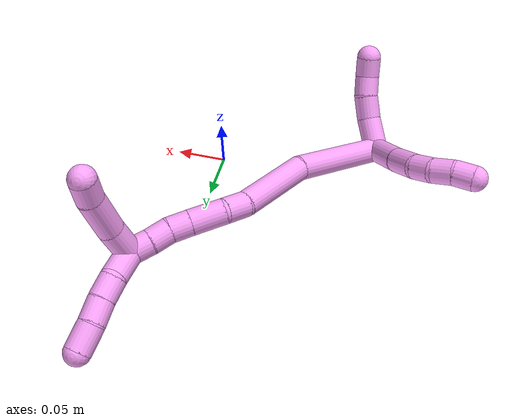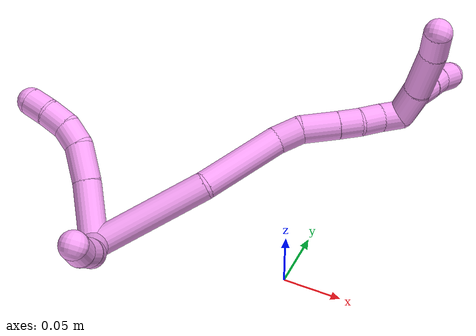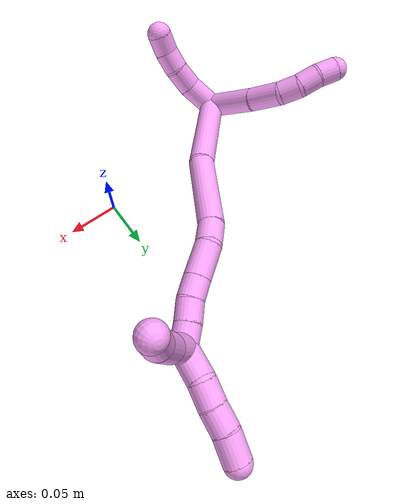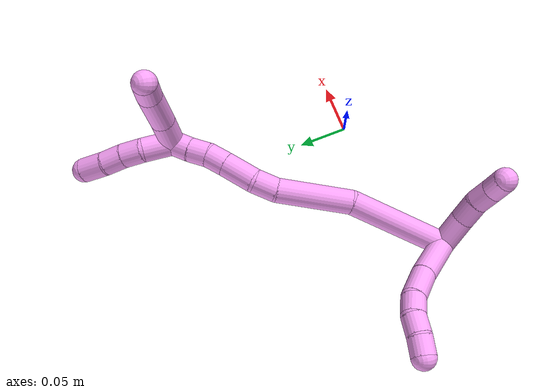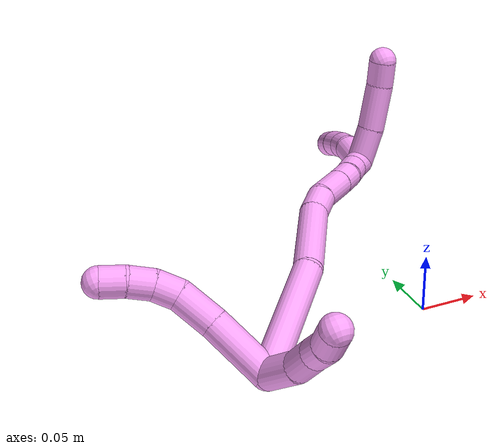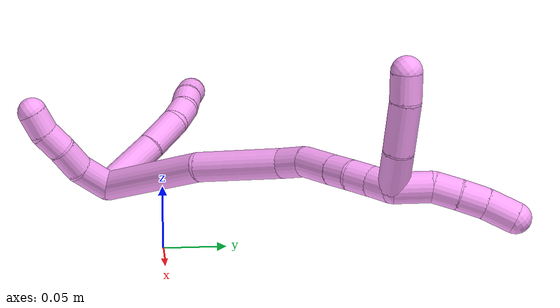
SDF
<sdf version="1.7">
 <world name="default">
  <model name="4">
   <static>0</static>
   <link name="4">
    <collision name="collision-cylinder-e_1_2_8">
     <pose>-0.010753 -0.004935 0.024592 0.198052 -0.404995 -0.04079</pose>
     <geometry><cylinder><radius>0.0125</radius><length>0.05458</length></cylinder></geometry>
     <surface>
      <friction><ode><mu>1.16</mu><mu2>1.16</mu2><slip1>0</slip1><slip2>0</slip2></ode></friction>
      <contact><ode><kp>1e+06</kp><kd>1</kd><max_vel>0</max_vel><min_depth>0.001</min_depth></ode></contact>
     </surface>
    </collision>
    <visual name="visual-cylinder-e_1_2_8">
     <pose>-0.010753 -0.004935 0.024592 0.198052 -0.404995 -0.04079</pose>
     <geometry><cylinder><radius>0.0125</radius><length>0.05458</length></cylinder></geometry>
     <material><ambient>1 0.65098 0.996078 1</ambient></material>
    </visual>
    <collision name="collision-cylinder-e_2_8_9">
     <pose>-0.029197 -0.014033 0.06357 0.281663 -0.474492 -0.068533</pose>
     <geometry><cylinder><radius>0.0125</radius><length>0.033671</length></cylinder></geometry>
     <surface>
      <friction><ode><mu>1.16</mu><mu2>1.16</mu2><slip1>0</slip1><slip2>0</slip2></ode></friction>
      <contact><ode><kp>1e+06</kp><kd>1</kd><max_vel>0</max_vel><min_depth>0.001</min_depth></ode></contact>
     </surface>
    </collision>
    <visual name="visual-cylinder-e_2_8_9">
     <pose>-0.029197 -0.014033 0.06357 0.281663 -0.474492 -0.068533</pose>
     <geometry><cylinder><radius>0.0125</radius><length>0.033671</length></cylinder></geometry>
     <material><ambient>1 0.65098 0.996078 1</ambient></material>
    </visual>
    <collision name="collision-cylinder-e_3_9_10">
     <pose>-0.043811 -0.022278 0.084461 0.5604 -0.733514 -0.220193</pose>
     <geometry><cylinder><radius>0.0125</radius><length>0.020678</length></cylinder></geometry>
     <surface>
      <friction><ode><mu>1.16</mu><mu2>1.16</mu2><slip1>0</slip1><slip2>0</slip2></ode></friction>
      <contact><ode><kp>1e+06</kp><kd>1</kd><max_vel>0</max_vel><min_depth>0.001</min_depth></ode></contact>
     </surface>
    </collision>
    <visual name="visual-cylinder-e_3_9_10">
     <pose>-0.043811 -0.022278 0.084461 0.5604 -0.733514 -0.220193</pose>
     <geometry><cylinder><radius>0.0125</radius><length>0.020678</length></cylinder></geometry>
     <material><ambient>1 0.65098 0.996078 1</ambient></material>
    </visual>
    <collision name="collision-cylinder-e_4_10_11">
     <pose>-0.058935 -0.031762 0.094738 0.961364 -0.894041 -0.489937</pose>
     <geometry><cylinder><radius>0.0125</radius><length>0.021041</length></cylinder></geometry>
     <surface>
      <friction><ode><mu>1.16</mu><mu2>1.16</mu2><slip1>0</slip1><slip2>0</slip2></ode></friction>
      <contact><ode><kp>1e+06</kp><kd>1</kd><max_vel>0</max_vel><min_depth>0.001</min_depth></ode></contact>
     </surface>
    </collision>
    <visual name="visual-cylinder-e_4_10_11">
     <pose>-0.058935 -0.031762 0.094738 0.961364 -0.894041 -0.489937</pose>
     <geometry><cylinder><radius>0.0125</radius><length>0.021041</length></cylinder></geometry>
     <material><ambient>1 0.65098 0.996078 1</ambient></material>
    </visual>
    <collision name="collision-cylinder-e_5_11_6">
     <pose>-0.076034 -0.040782 0.101347 0.905537 -1.0939 -0.575974</pose>
     <geometry><cylinder><radius>0.0125</radius><length>0.020029</length></cylinder></geometry>
     <surface>
      <friction><ode><mu>1.16</mu><mu2>1.16</mu2><slip1>0</slip1><slip2>0</slip2></ode></friction>
      <contact><ode><kp>1e+06</kp><kd>1</kd><max_vel>0</max_vel><min_depth>0.001</min_depth></ode></contact>
     </surface>
    </collision>
    <visual name="visual-cylinder-e_5_11_6">
     <pose>-0.076034 -0.040782 0.101347 0.905537 -1.0939 -0.575974</pose>
     <geometry><cylinder><radius>0.0125</radius><length>0.020029</length></cylinder></geometry>
     <material><ambient>1 0.65098 0.996078 1</ambient></material>
    </visual>
    <collision name="collision-cylinder-e_1_2_12">
     <pose>0.012549 -0.010738 -0.004179 1.94191 0.828022 1.14217</pose>
     <geometry><cylinder><radius>0.0125</radius><length>0.034072</length></cylinder></geometry>
     <surface>
      <friction><ode><mu>1.16</mu><mu2>1.16</mu2><slip1>0</slip1><slip2>0</slip2></ode></friction>
      <contact><ode><kp>1e+06</kp><kd>1</kd><max_vel>0</max_vel><min_depth>0.001</min_depth></ode></contact>
     </surface>
    </collision>
    <visual name="visual-cylinder-e_1_2_12">
     <pose>0.012549 -0.010738 -0.004179 1.94191 0.828022 1.14217</pose>
     <geometry><cylinder><radius>0.0125</radius><length>0.034072</length></cylinder></geometry>
     <material><ambient>1 0.65098 0.996078 1</ambient></material>
    </visual>
    <collision name="collision-cylinder-e_2_12_13">
     <pose>0.033526 -0.03049 -0.008443 1.58038 0.751848 0.758415</pose>
     <geometry><cylinder><radius>0.0125</radius><length>0.024683</length></cylinder></geometry>
     <surface>
      <friction><ode><mu>1.16</mu><mu2>1.16</mu2><slip1>0</slip1><slip2>0</slip2></ode></friction>
      <contact><ode><kp>1e+06</kp><kd>1</kd><max_vel>0</max_vel><min_depth>0.001</min_depth></ode></contact>
     </surface>
    </collision>
    <visual name="visual-cylinder-e_2_12_13">
     <pose>0.033526 -0.03049 -0.008443 1.58038 0.751848 0.758415</pose>
     <geometry><cylinder><radius>0.0125</radius><length>0.024683</length></cylinder></geometry>
     <material><ambient>1 0.65098 0.996078 1</ambient></material>
    </visual>
    <collision name="collision-cylinder-e_3_13_14">
     <pose>0.047553 -0.048255 -0.009598 1.69228 0.565643 0.634336</pose>
     <geometry><cylinder><radius>0.0125</radius><length>0.020887</length></cylinder></geometry>
     <surface>
      <friction><ode><mu>1.16</mu><mu2>1.16</mu2><slip1>0</slip1><slip2>0</slip2></ode></friction>
      <contact><ode><kp>1e+06</kp><kd>1</kd><max_vel>0</max_vel><min_depth>0.001</min_depth></ode></contact>
     </surface>
    </collision>
    <visual name="visual-cylinder-e_3_13_14">
     <pose>0.047553 -0.048255 -0.009598 1.69228 0.565643 0.634336</pose>
     <geometry><cylinder><radius>0.0125</radius><length>0.020887</length></cylinder></geometry>
     <material><ambient>1 0.65098 0.996078 1</ambient></material>
    </visual>
    <collision name="collision-cylinder-e_4_14_5">
     <pose>0.058225 -0.065665 -0.008967 1.37695 0.521989 0.43263</pose>
     <geometry><cylinder><radius>0.0125</radius><length>0.020359</length></cylinder></geometry>
     <surface>
      <friction><ode><mu>1.16</mu><mu2>1.16</mu2><slip1>0</slip1><slip2>0</slip2></ode></friction>
      <contact><ode><kp>1e+06</kp><kd>1</kd><max_vel>0</max_vel><min_depth>0.001</min_depth></ode></contact>
     </surface>
    </collision>
    <visual name="visual-cylinder-e_4_14_5">
     <pose>0.058225 -0.065665 -0.008967 1.37695 0.521989 0.43263</pose>
     <geometry><cylinder><radius>0.0125</radius><length>0.020359</length></cylinder></geometry>
     <material><ambient>1 0.65098 0.996078 1</ambient></material>
    </visual>
    <collision name="collision-cylinder-e_1_2_15">
     <pose>0.027397 0.025434 0.037549 -0.59536 0.543426 -0.170534</pose>
     <geometry><cylinder><radius>0.0125</radius><length>0.10597</length></cylinder></geometry>
     <surface>
      <friction><ode><mu>1.16</mu><mu2>1.16</mu2><slip1>0</slip1><slip2>0</slip2></ode></friction>
      <contact><ode><kp>1e+06</kp><kd>1</kd><max_vel>0</max_vel><min_depth>0.001</min_depth></ode></contact>
     </surface>
    </collision>
    <visual name="visual-cylinder-e_1_2_15">
     <pose>0.027397 0.025434 0.037549 -0.59536 0.543426 -0.170534</pose>
     <geometry><cylinder><radius>0.0125</radius><length>0.10597</length></cylinder></geometry>
     <material><ambient>1 0.65098 0.996078 1</ambient></material>
    </visual>
    <collision name="collision-cylinder-e_2_15_16">
     <pose>0.065257 0.074209 0.103737 -0.683838 0.275973 -0.098766</pose>
     <geometry><cylinder><radius>0.0125</radius><length>0.076798</length></cylinder></geometry>
     <surface>
      <friction><ode><mu>1.16</mu><mu2>1.16</mu2><slip1>0</slip1><slip2>0</slip2></ode></friction>
      <contact><ode><kp>1e+06</kp><kd>1</kd><max_vel>0</max_vel><min_depth>0.001</min_depth></ode></contact>
     </surface>
    </collision>
    <visual name="visual-cylinder-e_2_15_16">
     <pose>0.065257 0.074209 0.103737 -0.683838 0.275973 -0.098766</pose>
     <geometry><cylinder><radius>0.0125</radius><length>0.076798</length></cylinder></geometry>
     <material><ambient>1 0.65098 0.996078 1</ambient></material>
    </visual>
    <collision name="collision-cylinder-e_3_16_17">
     <pose>0.081516 0.104158 0.140118 -0.706484 0.517621 -0.194612</pose>
     <geometry><cylinder><radius>0.0125</radius><length>0.023426</length></cylinder></geometry>
     <surface>
      <friction><ode><mu>1.16</mu><mu2>1.16</mu2><slip1>0</slip1><slip2>0</slip2></ode></friction>
      <contact><ode><kp>1e+06</kp><kd>1</kd><max_vel>0</max_vel><min_depth>0.001</min_depth></ode></contact>
     </surface>
    </collision>
    <visual name="visual-cylinder-e_3_16_17">
     <pose>0.081516 0.104158 0.140118 -0.706484 0.517621 -0.194612</pose>
     <geometry><cylinder><radius>0.0125</radius><length>0.023426</length></cylinder></geometry>
     <material><ambient>1 0.65098 0.996078 1</ambient></material>
    </visual>
    <collision name="collision-cylinder-e_4_17_18">
     <pose>0.096723 0.122767 0.15474 -1.05028 0.597418 -0.353108</pose>
     <geometry><cylinder><radius>0.0125</radius><length>0.033462</length></cylinder></geometry>
     <surface>
      <friction><ode><mu>1.16</mu><mu2>1.16</mu2><slip1>0</slip1><slip2>0</slip2></ode></friction>
      <contact><ode><kp>1e+06</kp><kd>1</kd><max_vel>0</max_vel><min_depth>0.001</min_depth></ode></contact>
     </surface>
    </collision>
    <visual name="visual-cylinder-e_4_17_18">
     <pose>0.096723 0.122767 0.15474 -1.05028 0.597418 -0.353108</pose>
     <geometry><cylinder><radius>0.0125</radius><length>0.033462</length></cylinder></geometry>
     <material><ambient>1 0.65098 0.996078 1</ambient></material>
    </visual>
    <collision name="collision-cylinder-e_5_18_19">
     <pose>0.111603 0.141979 0.165966 -1.02845 0.576026 -0.33164</pose>
     <geometry><cylinder><radius>0.0125</radius><length>0.020079</length></cylinder></geometry>
     <surface>
      <friction><ode><mu>1.16</mu><mu2>1.16</mu2><slip1>0</slip1><slip2>0</slip2></ode></friction>
      <contact><ode><kp>1e+06</kp><kd>1</kd><max_vel>0</max_vel><min_depth>0.001</min_depth></ode></contact>
     </surface>
    </collision>
    <visual name="visual-cylinder-e_5_18_19">
     <pose>0.111603 0.141979 0.165966 -1.02845 0.576026 -0.33164</pose>
     <geometry><cylinder><radius>0.0125</radius><length>0.020079</length></cylinder></geometry>
     <material><ambient>1 0.65098 0.996078 1</ambient></material>
    </visual>
    <collision name="collision-cylinder-e_6_19_20">
     <pose>0.120699 0.157186 0.175267 -1.01598 0.368069 -0.206519</pose>
     <geometry><cylinder><radius>0.0125</radius><length>0.020163</length></cylinder></geometry>
     <surface>
      <friction><ode><mu>1.16</mu><mu2>1.16</mu2><slip1>0</slip1><slip2>0</slip2></ode></friction>
      <contact><ode><kp>1e+06</kp><kd>1</kd><max_vel>0</max_vel><min_depth>0.001</min_depth></ode></contact>
     </surface>
    </collision>
    <visual name="visual-cylinder-e_6_19_20">
     <pose>0.120699 0.157186 0.175267 -1.01598 0.368069 -0.206519</pose>
     <geometry><cylinder><radius>0.0125</radius><length>0.020163</length></cylinder></geometry>
     <material><ambient>1 0.65098 0.996078 1</ambient></material>
    </visual>
    <collision name="collision-cylinder-e_7_20_1">
     <pose>0.128739 0.172993 0.184752 -1.04527 0.454443 -0.264832</pose>
     <geometry><cylinder><radius>0.0125</radius><length>0.020101</length></cylinder></geometry>
     <surface>
      <friction><ode><mu>1.16</mu><mu2>1.16</mu2><slip1>0</slip1><slip2>0</slip2></ode></friction>
      <contact><ode><kp>1e+06</kp><kd>1</kd><max_vel>0</max_vel><min_depth>0.001</min_depth></ode></contact>
     </surface>
    </collision>
    <visual name="visual-cylinder-e_7_20_1">
     <pose>0.128739 0.172993 0.184752 -1.04527 0.454443 -0.264832</pose>
     <geometry><cylinder><radius>0.0125</radius><length>0.020101</length></cylinder></geometry>
     <material><ambient>1 0.65098 0.996078 1</ambient></material>
    </visual>
    <collision name="collision-cylinder-e_1_1_21">
     <pose>0.131237 0.189806 0.201677 -0.628114 -0.124269 0.04041</pose>
     <geometry><cylinder><radius>0.0125</radius><length>0.030874</length></cylinder></geometry>
     <surface>
      <friction><ode><mu>1.16</mu><mu2>1.16</mu2><slip1>0</slip1><slip2>0</slip2></ode></friction>
      <contact><ode><kp>1e+06</kp><kd>1</kd><max_vel>0</max_vel><min_depth>0.001</min_depth></ode></contact>
     </surface>
    </collision>
    <visual name="visual-cylinder-e_1_1_21">
     <pose>0.131237 0.189806 0.201677 -0.628114 -0.124269 0.04041</pose>
     <geometry><cylinder><radius>0.0125</radius><length>0.030874</length></cylinder></geometry>
     <material><ambient>1 0.65098 0.996078 1</ambient></material>
    </visual>
    <collision name="collision-cylinder-e_2_21_22">
     <pose>0.127524 0.207353 0.220187 -0.949652 -0.169591 0.087333</pose>
     <geometry><cylinder><radius>0.0125</radius><length>0.021323</length></cylinder></geometry>
     <surface>
      <friction><ode><mu>1.16</mu><mu2>1.16</mu2><slip1>0</slip1><slip2>0</slip2></ode></friction>
      <contact><ode><kp>1e+06</kp><kd>1</kd><max_vel>0</max_vel><min_depth>0.001</min_depth></ode></contact>
     </surface>
    </collision>
    <visual name="visual-cylinder-e_2_21_22">
     <pose>0.127524 0.207353 0.220187 -0.949652 -0.169591 0.087333</pose>
     <geometry><cylinder><radius>0.0125</radius><length>0.021323</length></cylinder></geometry>
     <material><ambient>1 0.65098 0.996078 1</ambient></material>
    </visual>
    <collision name="collision-cylinder-e_3_22_23">
     <pose>0.122814 0.224618 0.232227 -0.973954 -0.269369 0.143257</pose>
     <geometry><cylinder><radius>0.0125</radius><length>0.021873</length></cylinder></geometry>
     <surface>
      <friction><ode><mu>1.16</mu><mu2>1.16</mu2><slip1>0</slip1><slip2>0</slip2></ode></friction>
      <contact><ode><kp>1e+06</kp><kd>1</kd><max_vel>0</max_vel><min_depth>0.001</min_depth></ode></contact>
     </surface>
    </collision>
    <visual name="visual-cylinder-e_3_22_23">
     <pose>0.122814 0.224618 0.232227 -0.973954 -0.269369 0.143257</pose>
     <geometry><cylinder><radius>0.0125</radius><length>0.021873</length></cylinder></geometry>
     <material><ambient>1 0.65098 0.996078 1</ambient></material>
    </visual>
    <collision name="collision-cylinder-e_4_23_4">
     <pose>0.117495 0.244742 0.243829 -1.10892 -0.186891 0.115942</pose>
     <geometry><cylinder><radius>0.0125</radius><length>0.02593</length></cylinder></geometry>
     <surface>
      <friction><ode><mu>1.16</mu><mu2>1.16</mu2><slip1>0</slip1><slip2>0</slip2></ode></friction>
      <contact><ode><kp>1e+06</kp><kd>1</kd><max_vel>0</max_vel><min_depth>0.001</min_depth></ode></contact>
     </surface>
    </collision>
    <visual name="visual-cylinder-e_4_23_4">
     <pose>0.117495 0.244742 0.243829 -1.10892 -0.186891 0.115942</pose>
     <geometry><cylinder><radius>0.0125</radius><length>0.02593</length></cylinder></geometry>
     <material><ambient>1 0.65098 0.996078 1</ambient></material>
    </visual>
    <collision name="collision-cylinder-e_1_1_24">
     <pose>0.144565 0.172955 0.199576 0.651523 0.722622 0.253933</pose>
     <geometry><cylinder><radius>0.0125</radius><length>0.034519</length></cylinder></geometry>
     <surface>
      <friction><ode><mu>1.16</mu><mu2>1.16</mu2><slip1>0</slip1><slip2>0</slip2></ode></friction>
      <contact><ode><kp>1e+06</kp><kd>1</kd><max_vel>0</max_vel><min_depth>0.001</min_depth></ode></contact>
     </surface>
    </collision>
    <visual name="visual-cylinder-e_1_1_24">
     <pose>0.144565 0.172955 0.199576 0.651523 0.722622 0.253933</pose>
     <geometry><cylinder><radius>0.0125</radius><length>0.034519</length></cylinder></geometry>
     <material><ambient>1 0.65098 0.996078 1</ambient></material>
    </visual>
    <collision name="collision-cylinder-e_2_24_25">
     <pose>0.16778 0.15402 0.223449 0.684625 0.592514 0.216687</pose>
     <geometry><cylinder><radius>0.0125</radius><length>0.042261</length></cylinder></geometry>
     <surface>
      <friction><ode><mu>1.16</mu><mu2>1.16</mu2><slip1>0</slip1><slip2>0</slip2></ode></friction>
      <contact><ode><kp>1e+06</kp><kd>1</kd><max_vel>0</max_vel><min_depth>0.001</min_depth></ode></contact>
     </surface>
    </collision>
    <visual name="visual-cylinder-e_2_24_25">
     <pose>0.16778 0.15402 0.223449 0.684625 0.592514 0.216687</pose>
     <geometry><cylinder><radius>0.0125</radius><length>0.042261</length></cylinder></geometry>
     <material><ambient>1 0.65098 0.996078 1</ambient></material>
    </visual>
    <collision name="collision-cylinder-e_3_25_3">
     <pose>0.184974 0.135419 0.244042 0.819906 0.483212 0.213362</pose>
     <geometry><cylinder><radius>0.0125</radius><length>0.023221</length></cylinder></geometry>
     <surface>
      <friction><ode><mu>1.16</mu><mu2>1.16</mu2><slip1>0</slip1><slip2>0</slip2></ode></friction>
      <contact><ode><kp>1e+06</kp><kd>1</kd><max_vel>0</max_vel><min_depth>0.001</min_depth></ode></contact>
     </surface>
    </collision>
    <visual name="visual-cylinder-e_3_25_3">
     <pose>0.184974 0.135419 0.244042 0.819906 0.483212 0.213362</pose>
     <geometry><cylinder><radius>0.0125</radius><length>0.023221</length></cylinder></geometry>
     <material><ambient>1 0.65098 0.996078 1</ambient></material>
    </visual>
    <collision name="collision-sphere-3">
     <pose>0.190369 0.127903 0.251057 0 -0 0</pose>
     <geometry><sphere><radius>0.0125</radius></sphere></geometry>
     <surface>
      <friction><ode><mu>1.16</mu><mu2>1.16</mu2><slip1>0</slip1><slip2>0</slip2></ode></friction>
      <contact><ode><kp>1e+06</kp><kd>1</kd><max_vel>0</max_vel><min_depth>0.001</min_depth></ode></contact>
     </surface>
    </collision>
    <visual name="visual-sphere-3">
     <pose>0.190369 0.127903 0.251057 0 -0 0</pose>
     <geometry><sphere><radius>0.0125</radius></sphere></geometry>
     <material><ambient>1 0.65098 0.996078 1</ambient></material>
    </visual>
    <collision name="collision-sphere-25">
     <pose>0.17958 0.142935 0.237027 0 -0 0</pose>
     <geometry><sphere><radius>0.0125</radius></sphere></geometry>
     <surface>
      <friction><ode><mu>1.16</mu><mu2>1.16</mu2><slip1>0</slip1><slip2>0</slip2></ode></friction>
      <contact><ode><kp>1e+06</kp><kd>1</kd><max_vel>0</max_vel><min_depth>0.001</min_depth></ode></contact>
     </surface>
    </collision>
    <visual name="visual-sphere-25">
     <pose>0.17958 0.142935 0.237027 0 -0 0</pose>
     <geometry><sphere><radius>0.0125</radius></sphere></geometry>
     <material><ambient>1 0.65098 0.996078 1</ambient></material>
    </visual>
    <collision name="collision-sphere-24">
     <pose>0.155979 0.165105 0.20987 0 -0 0</pose>
     <geometry><sphere><radius>0.0125</radius></sphere></geometry>
     <surface>
      <friction><ode><mu>1.16</mu><mu2>1.16</mu2><slip1>0</slip1><slip2>0</slip2></ode></friction>
      <contact><ode><kp>1e+06</kp><kd>1</kd><max_vel>0</max_vel><min_depth>0.001</min_depth></ode></contact>
     </surface>
    </collision>
    <visual name="visual-sphere-24">
     <pose>0.155979 0.165105 0.20987 0 -0 0</pose>
     <geometry><sphere><radius>0.0125</radius></sphere></geometry>
     <material><ambient>1 0.65098 0.996078 1</ambient></material>
    </visual>
    <collision name="collision-sphere-4">
     <pose>0.115086 0.256147 0.249506 0 -0 0</pose>
     <geometry><sphere><radius>0.0125</radius></sphere></geometry>
     <surface>
      <friction><ode><mu>1.16</mu><mu2>1.16</mu2><slip1>0</slip1><slip2>0</slip2></ode></friction>
      <contact><ode><kp>1e+06</kp><kd>1</kd><max_vel>0</max_vel><min_depth>0.001</min_depth></ode></contact>
     </surface>
    </collision>
    <visual name="visual-sphere-4">
     <pose>0.115086 0.256147 0.249506 0 -0 0</pose>
     <geometry><sphere><radius>0.0125</radius></sphere></geometry>
     <material><ambient>1 0.65098 0.996078 1</ambient></material>
    </visual>
    <collision name="collision-sphere-23">
     <pose>0.119904 0.233338 0.238152 0 -0 0</pose>
     <geometry><sphere><radius>0.0125</radius></sphere></geometry>
     <surface>
      <friction><ode><mu>1.16</mu><mu2>1.16</mu2><slip1>0</slip1><slip2>0</slip2></ode></friction>
      <contact><ode><kp>1e+06</kp><kd>1</kd><max_vel>0</max_vel><min_depth>0.001</min_depth></ode></contact>
     </surface>
    </collision>
    <visual name="visual-sphere-23">
     <pose>0.119904 0.233338 0.238152 0 -0 0</pose>
     <geometry><sphere><radius>0.0125</radius></sphere></geometry>
     <material><ambient>1 0.65098 0.996078 1</ambient></material>
    </visual>
    <collision name="collision-sphere-22">
     <pose>0.125725 0.215899 0.226302 0 -0 0</pose>
     <geometry><sphere><radius>0.0125</radius></sphere></geometry>
     <surface>
      <friction><ode><mu>1.16</mu><mu2>1.16</mu2><slip1>0</slip1><slip2>0</slip2></ode></friction>
      <contact><ode><kp>1e+06</kp><kd>1</kd><max_vel>0</max_vel><min_depth>0.001</min_depth></ode></contact>
     </surface>
    </collision>
    <visual name="visual-sphere-22">
     <pose>0.125725 0.215899 0.226302 0 -0 0</pose>
     <geometry><sphere><radius>0.0125</radius></sphere></geometry>
     <material><ambient>1 0.65098 0.996078 1</ambient></material>
    </visual>
    <collision name="collision-sphere-21">
     <pose>0.129324 0.198807 0.214071 0 -0 0</pose>
     <geometry><sphere><radius>0.0125</radius></sphere></geometry>
     <surface>
      <friction><ode><mu>1.16</mu><mu2>1.16</mu2><slip1>0</slip1><slip2>0</slip2></ode></friction>
      <contact><ode><kp>1e+06</kp><kd>1</kd><max_vel>0</max_vel><min_depth>0.001</min_depth></ode></contact>
     </surface>
    </collision>
    <visual name="visual-sphere-21">
     <pose>0.129324 0.198807 0.214071 0 -0 0</pose>
     <geometry><sphere><radius>0.0125</radius></sphere></geometry>
     <material><ambient>1 0.65098 0.996078 1</ambient></material>
    </visual>
    <collision name="collision-sphere-1">
     <pose>0.13315 0.180805 0.189282 0 -0 0</pose>
     <geometry><sphere><radius>0.0125</radius></sphere></geometry>
     <surface>
      <friction><ode><mu>1.16</mu><mu2>1.16</mu2><slip1>0</slip1><slip2>0</slip2></ode></friction>
      <contact><ode><kp>1e+06</kp><kd>1</kd><max_vel>0</max_vel><min_depth>0.001</min_depth></ode></contact>
     </surface>
    </collision>
    <visual name="visual-sphere-1">
     <pose>0.13315 0.180805 0.189282 0 -0 0</pose>
     <geometry><sphere><radius>0.0125</radius></sphere></geometry>
     <material><ambient>1 0.65098 0.996078 1</ambient></material>
    </visual>
    <collision name="collision-sphere-6">
     <pose>-0.084931 -0.044398 0.104184 0 -0 0</pose>
     <geometry><sphere><radius>0.0125</radius></sphere></geometry>
     <surface>
      <friction><ode><mu>1.16</mu><mu2>1.16</mu2><slip1>0</slip1><slip2>0</slip2></ode></friction>
      <contact><ode><kp>1e+06</kp><kd>1</kd><max_vel>0</max_vel><min_depth>0.001</min_depth></ode></contact>
     </surface>
    </collision>
    <visual name="visual-sphere-6">
     <pose>-0.084931 -0.044398 0.104184 0 -0 0</pose>
     <geometry><sphere><radius>0.0125</radius></sphere></geometry>
     <material><ambient>1 0.65098 0.996078 1</ambient></material>
    </visual>
    <collision name="collision-sphere-11">
     <pose>-0.067137 -0.037165 0.098509 0 -0 0</pose>
     <geometry><sphere><radius>0.0125</radius></sphere></geometry>
     <surface>
      <friction><ode><mu>1.16</mu><mu2>1.16</mu2><slip1>0</slip1><slip2>0</slip2></ode></friction>
      <contact><ode><kp>1e+06</kp><kd>1</kd><max_vel>0</max_vel><min_depth>0.001</min_depth></ode></contact>
     </surface>
    </collision>
    <visual name="visual-sphere-11">
     <pose>-0.067137 -0.037165 0.098509 0 -0 0</pose>
     <geometry><sphere><radius>0.0125</radius></sphere></geometry>
     <material><ambient>1 0.65098 0.996078 1</ambient></material>
    </visual>
    <collision name="collision-sphere-10">
     <pose>-0.050733 -0.02636 0.090966 0 -0 0</pose>
     <geometry><sphere><radius>0.0125</radius></sphere></geometry>
     <surface>
      <friction><ode><mu>1.16</mu><mu2>1.16</mu2><slip1>0</slip1><slip2>0</slip2></ode></friction>
      <contact><ode><kp>1e+06</kp><kd>1</kd><max_vel>0</max_vel><min_depth>0.001</min_depth></ode></contact>
     </surface>
    </collision>
    <visual name="visual-sphere-10">
     <pose>-0.050733 -0.02636 0.090966 0 -0 0</pose>
     <geometry><sphere><radius>0.0125</radius></sphere></geometry>
     <material><ambient>1 0.65098 0.996078 1</ambient></material>
    </visual>
    <collision name="collision-sphere-9">
     <pose>-0.036889 -0.018196 0.077955 0 -0 0</pose>
     <geometry><sphere><radius>0.0125</radius></sphere></geometry>
     <surface>
      <friction><ode><mu>1.16</mu><mu2>1.16</mu2><slip1>0</slip1><slip2>0</slip2></ode></friction>
      <contact><ode><kp>1e+06</kp><kd>1</kd><max_vel>0</max_vel><min_depth>0.001</min_depth></ode></contact>
     </surface>
    </collision>
    <visual name="visual-sphere-9">
     <pose>-0.036889 -0.018196 0.077955 0 -0 0</pose>
     <geometry><sphere><radius>0.0125</radius></sphere></geometry>
     <material><ambient>1 0.65098 0.996078 1</ambient></material>
    </visual>
    <collision name="collision-sphere-2">
     <geometry><sphere><radius>0.0125</radius></sphere></geometry>
     <surface>
      <friction><ode><mu>1.16</mu><mu2>1.16</mu2><slip1>0</slip1><slip2>0</slip2></ode></friction>
      <contact><ode><kp>1e+06</kp><kd>1</kd><max_vel>0</max_vel><min_depth>0.001</min_depth></ode></contact>
     </surface>
    </collision>
    <visual name="visual-sphere-2">
     <geometry><sphere><radius>0.0125</radius></sphere></geometry>
     <material><ambient>1 0.65098 0.996078 1</ambient></material>
    </visual>
    <collision name="collision-sphere-19">
     <pose>0.117072 0.149191 0.170312 0 -0 0</pose>
     <geometry><sphere><radius>0.0125</radius></sphere></geometry>
     <surface>
      <friction><ode><mu>1.16</mu><mu2>1.16</mu2><slip1>0</slip1><slip2>0</slip2></ode></friction>
      <contact><ode><kp>1e+06</kp><kd>1</kd><max_vel>0</max_vel><min_depth>0.001</min_depth></ode></contact>
     </surface>
    </collision>
    <visual name="visual-sphere-19">
     <pose>0.117072 0.149191 0.170312 0 -0 0</pose>
     <geometry><sphere><radius>0.0125</radius></sphere></geometry>
     <material><ambient>1 0.65098 0.996078 1</ambient></material>
    </visual>
    <collision name="collision-sphere-8">
     <pose>-0.021505 -0.00987 0.049184 0 -0 0</pose>
     <geometry><sphere><radius>0.0125</radius></sphere></geometry>
     <surface>
      <friction><ode><mu>1.16</mu><mu2>1.16</mu2><slip1>0</slip1><slip2>0</slip2></ode></friction>
      <contact><ode><kp>1e+06</kp><kd>1</kd><max_vel>0</max_vel><min_depth>0.001</min_depth></ode></contact>
     </surface>
    </collision>
    <visual name="visual-sphere-8">
     <pose>-0.021505 -0.00987 0.049184 0 -0 0</pose>
     <geometry><sphere><radius>0.0125</radius></sphere></geometry>
     <material><ambient>1 0.65098 0.996078 1</ambient></material>
    </visual>
    <collision name="collision-sphere-12">
     <pose>0.025098 -0.021476 -0.008357 0 -0 0</pose>
     <geometry><sphere><radius>0.0125</radius></sphere></geometry>
     <surface>
      <friction><ode><mu>1.16</mu><mu2>1.16</mu2><slip1>0</slip1><slip2>0</slip2></ode></friction>
      <contact><ode><kp>1e+06</kp><kd>1</kd><max_vel>0</max_vel><min_depth>0.001</min_depth></ode></contact>
     </surface>
    </collision>
    <visual name="visual-sphere-12">
     <pose>0.025098 -0.021476 -0.008357 0 -0 0</pose>
     <geometry><sphere><radius>0.0125</radius></sphere></geometry>
     <material><ambient>1 0.65098 0.996078 1</ambient></material>
    </visual>
    <collision name="collision-sphere-13">
     <pose>0.041955 -0.039504 -0.00853 0 -0 0</pose>
     <geometry><sphere><radius>0.0125</radius></sphere></geometry>
     <surface>
      <friction><ode><mu>1.16</mu><mu2>1.16</mu2><slip1>0</slip1><slip2>0</slip2></ode></friction>
      <contact><ode><kp>1e+06</kp><kd>1</kd><max_vel>0</max_vel><min_depth>0.001</min_depth></ode></contact>
     </surface>
    </collision>
    <visual name="visual-sphere-13">
     <pose>0.041955 -0.039504 -0.00853 0 -0 0</pose>
     <geometry><sphere><radius>0.0125</radius></sphere></geometry>
     <material><ambient>1 0.65098 0.996078 1</ambient></material>
    </visual>
    <collision name="collision-sphere-14">
     <pose>0.05315 -0.057007 -0.010667 0 -0 0</pose>
     <geometry><sphere><radius>0.0125</radius></sphere></geometry>
     <surface>
      <friction><ode><mu>1.16</mu><mu2>1.16</mu2><slip1>0</slip1><slip2>0</slip2></ode></friction>
      <contact><ode><kp>1e+06</kp><kd>1</kd><max_vel>0</max_vel><min_depth>0.001</min_depth></ode></contact>
     </surface>
    </collision>
    <visual name="visual-sphere-14">
     <pose>0.05315 -0.057007 -0.010667 0 -0 0</pose>
     <geometry><sphere><radius>0.0125</radius></sphere></geometry>
     <material><ambient>1 0.65098 0.996078 1</ambient></material>
    </visual>
    <collision name="collision-sphere-5">
     <pose>0.063301 -0.074324 -0.007267 0 -0 0</pose>
     <geometry><sphere><radius>0.0125</radius></sphere></geometry>
     <surface>
      <friction><ode><mu>1.16</mu><mu2>1.16</mu2><slip1>0</slip1><slip2>0</slip2></ode></friction>
      <contact><ode><kp>1e+06</kp><kd>1</kd><max_vel>0</max_vel><min_depth>0.001</min_depth></ode></contact>
     </surface>
    </collision>
    <visual name="visual-sphere-5">
     <pose>0.063301 -0.074324 -0.007267 0 -0 0</pose>
     <geometry><sphere><radius>0.0125</radius></sphere></geometry>
     <material><ambient>1 0.65098 0.996078 1</ambient></material>
    </visual>
    <collision name="collision-sphere-15">
     <pose>0.054794 0.050868 0.075098 0 -0 0</pose>
     <geometry><sphere><radius>0.0125</radius></sphere></geometry>
     <surface>
      <friction><ode><mu>1.16</mu><mu2>1.16</mu2><slip1>0</slip1><slip2>0</slip2></ode></friction>
      <contact><ode><kp>1e+06</kp><kd>1</kd><max_vel>0</max_vel><min_depth>0.001</min_depth></ode></contact>
     </surface>
    </collision>
    <visual name="visual-sphere-15">
     <pose>0.054794 0.050868 0.075098 0 -0 0</pose>
     <geometry><sphere><radius>0.0125</radius></sphere></geometry>
     <material><ambient>1 0.65098 0.996078 1</ambient></material>
    </visual>
    <collision name="collision-sphere-16">
     <pose>0.07572 0.097551 0.132376 0 -0 0</pose>
     <geometry><sphere><radius>0.0125</radius></sphere></geometry>
     <surface>
      <friction><ode><mu>1.16</mu><mu2>1.16</mu2><slip1>0</slip1><slip2>0</slip2></ode></friction>
      <contact><ode><kp>1e+06</kp><kd>1</kd><max_vel>0</max_vel><min_depth>0.001</min_depth></ode></contact>
     </surface>
    </collision>
    <visual name="visual-sphere-16">
     <pose>0.07572 0.097551 0.132376 0 -0 0</pose>
     <geometry><sphere><radius>0.0125</radius></sphere></geometry>
     <material><ambient>1 0.65098 0.996078 1</ambient></material>
    </visual>
    <collision name="collision-sphere-17">
     <pose>0.087312 0.110766 0.147861 0 -0 0</pose>
     <geometry><sphere><radius>0.0125</radius></sphere></geometry>
     <surface>
      <friction><ode><mu>1.16</mu><mu2>1.16</mu2><slip1>0</slip1><slip2>0</slip2></ode></friction>
      <contact><ode><kp>1e+06</kp><kd>1</kd><max_vel>0</max_vel><min_depth>0.001</min_depth></ode></contact>
     </surface>
    </collision>
    <visual name="visual-sphere-17">
     <pose>0.087312 0.110766 0.147861 0 -0 0</pose>
     <geometry><sphere><radius>0.0125</radius></sphere></geometry>
     <material><ambient>1 0.65098 0.996078 1</ambient></material>
    </visual>
    <collision name="collision-sphere-18">
     <pose>0.106135 0.134768 0.16162 0 -0 0</pose>
     <geometry><sphere><radius>0.0125</radius></sphere></geometry>
     <surface>
      <friction><ode><mu>1.16</mu><mu2>1.16</mu2><slip1>0</slip1><slip2>0</slip2></ode></friction>
      <contact><ode><kp>1e+06</kp><kd>1</kd><max_vel>0</max_vel><min_depth>0.001</min_depth></ode></contact>
     </surface>
    </collision>
    <visual name="visual-sphere-18">
     <pose>0.106135 0.134768 0.16162 0 -0 0</pose>
     <geometry><sphere><radius>0.0125</radius></sphere></geometry>
     <material><ambient>1 0.65098 0.996078 1</ambient></material>
    </visual>
    <collision name="collision-sphere-20">
     <pose>0.124327 0.165181 0.180222 0 -0 0</pose>
     <geometry><sphere><radius>0.0125</radius></sphere></geometry>
     <surface>
      <friction><ode><mu>1.16</mu><mu2>1.16</mu2><slip1>0</slip1><slip2>0</slip2></ode></friction>
      <contact><ode><kp>1e+06</kp><kd>1</kd><max_vel>0</max_vel><min_depth>0.001</min_depth></ode></contact>
     </surface>
    </collision>
    <visual name="visual-sphere-20">
     <pose>0.124327 0.165181 0.180222 0 -0 0</pose>
     <geometry><sphere><radius>0.0125</radius></sphere></geometry>
     <material><ambient>1 0.65098 0.996078 1</ambient></material>
    </visual>
    <inertial>
     <pose>0.063197 0.073938 0.11177 0 -0 0</pose>
     <mass>0.75</mass>
     <inertia>
      <ixx>0.000179</ixx>
      <ixy>0</ixy>
      <ixz>0</ixz>
      <iyy>0.000167</iyy>
      <iyz>0</iyz>
      <izz>-0.000108</izz>
     </inertia>
    </inertial>
   </link>
   <pose>-0.157925 -0.042118 0.011484 -0.848095 -0.395623 -0.26135</pose>
  </model>
 </world>
</sdf>
